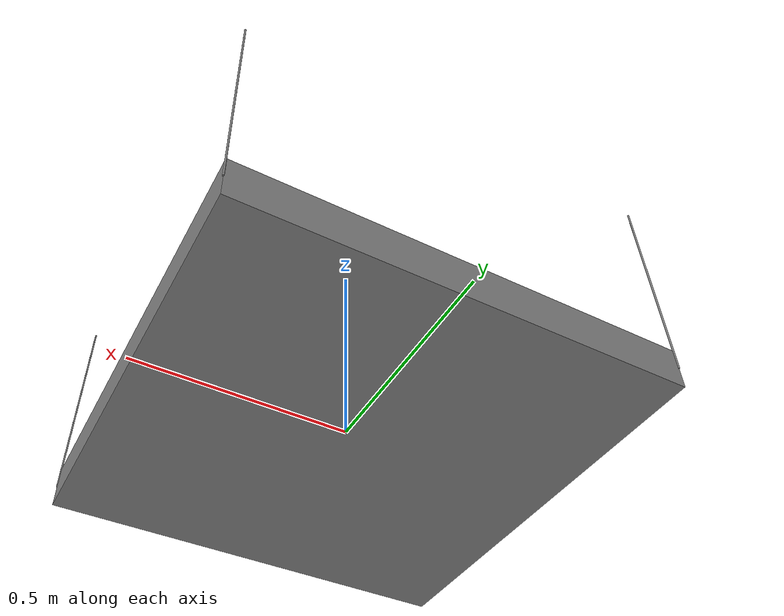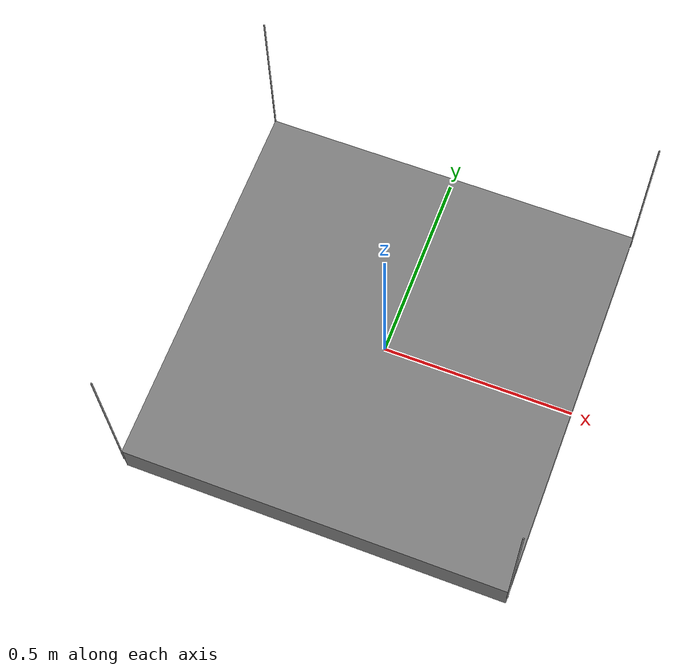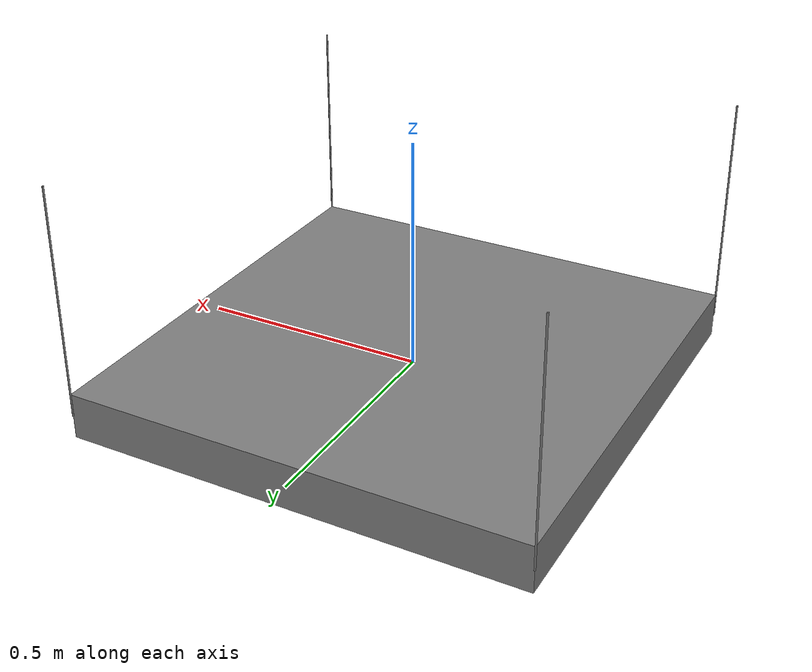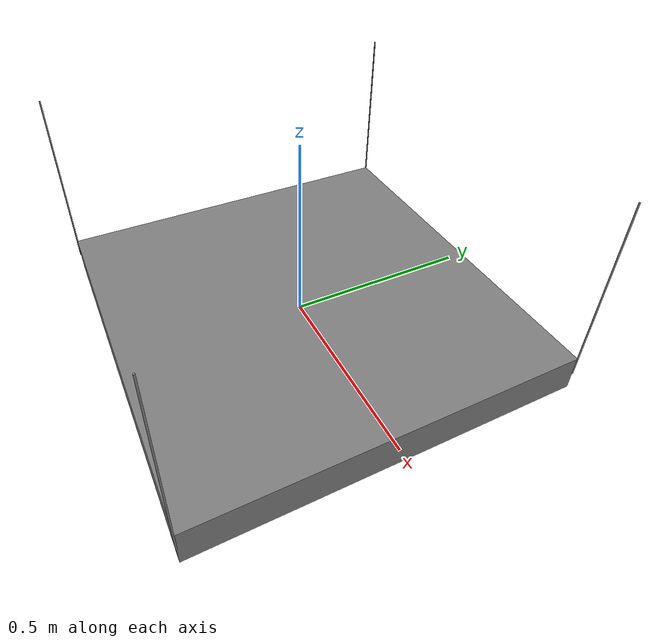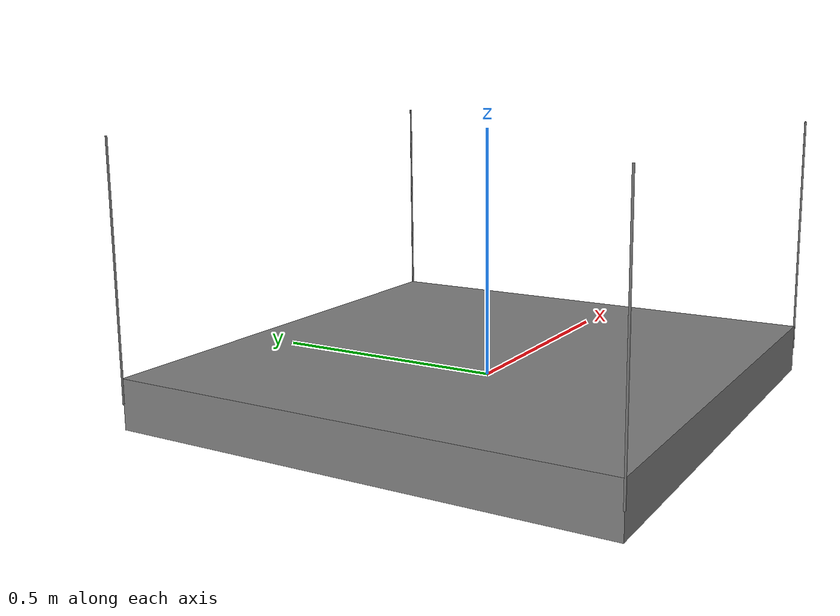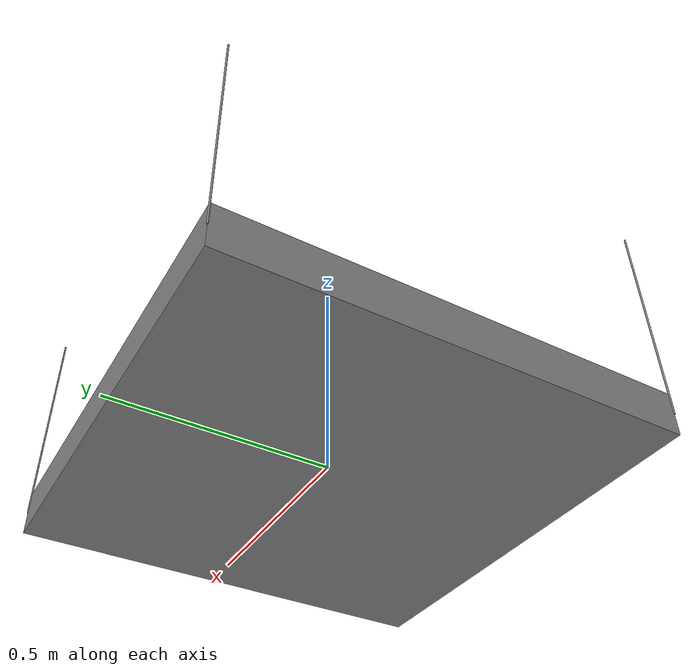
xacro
<?xml version="1.0"?>
<robot name="payload" xmlns:xacro="http://www.ros.org/wiki/xacro">

  <!-- Define the grey material -->
  <material name="grey">
    <color rgba="0.5 0.5 0.5 1.0"/>
  </material>

  <!-- Base plate -->
  <link name="world_link"/>
  <joint name="dummy_joint" type="fixed">
    <parent link="world_link"/>
    <child link="base_plate"/>
  </joint>
  <link name="base_plate">
    <visual>
      <geometry>
        <box size="1 1 0.1"/>
      </geometry>
      <material name="grey"/>
    </visual>
    <collision>
      <geometry>
        <box size="1 1 0.1"/>
      </geometry>
    </collision>
    <inertial>
      <mass value="0.1"/>
      <origin xyz="0 0 0" rpy="0 0 0"/>
      <inertia ixx="0.1" ixy="0.0" ixz="0.0" iyy="0.1" iyz="0.0" izz="0.1"/>
    </inertial>
  </link>

  <!-- Define the four rods -->
  <xacro:macro name="rod" params="name x y">
    <link name="${name}">
      <visual>
        <geometry>
          <cylinder radius="0.002" length="0.5"/>
        </geometry>
        <origin xyz="0 0 0.25" rpy="0 0 0"/>
        <material name="grey"/>
      </visual>
      <collision>
        <geometry>
          <cylinder radius="0.02" length="0.5"/>
        </geometry>
        <origin xyz="0 0 0.25" rpy="0 0 0"/>
      </collision>
      <inertial>
        <mass value="0.0"/>
        <origin xyz="0 0 0.25" rpy="0 0 0"/>
        <inertia ixx="0.0" ixy="0.0" ixz="0.0" iyy="0.0" iyz="0.0" izz="0.0"/>
      </inertial>
    </link>
    <joint name="${name}_joint" type="fixed">
      <parent link="base_plate"/>
      <child link="${name}"/>
      <origin xyz="${x} ${y} 0" rpy="0 0 0"/>
    </joint>
  </xacro:macro>

  <xacro:rod name="rod1" x="0.5" y="0.5"/>
  <xacro:rod name="rod2" x="-0.5" y="0.5"/>
  <xacro:rod name="rod3" x="-0.5" y="-0.5"/>
  <xacro:rod name="rod4" x="0.5" y="-0.5"/>

  <!-- Floating joints for quadrotors -->

  <gazebo>
    <plugin name="GazeboPlugin" filename="home/gzmtsim/GazeboPlugin/export/lib/libGazeboCoSimPlugin.so">
      <portNumber>14581</portNumber>

    </plugin>
  </gazebo>

</robot>
